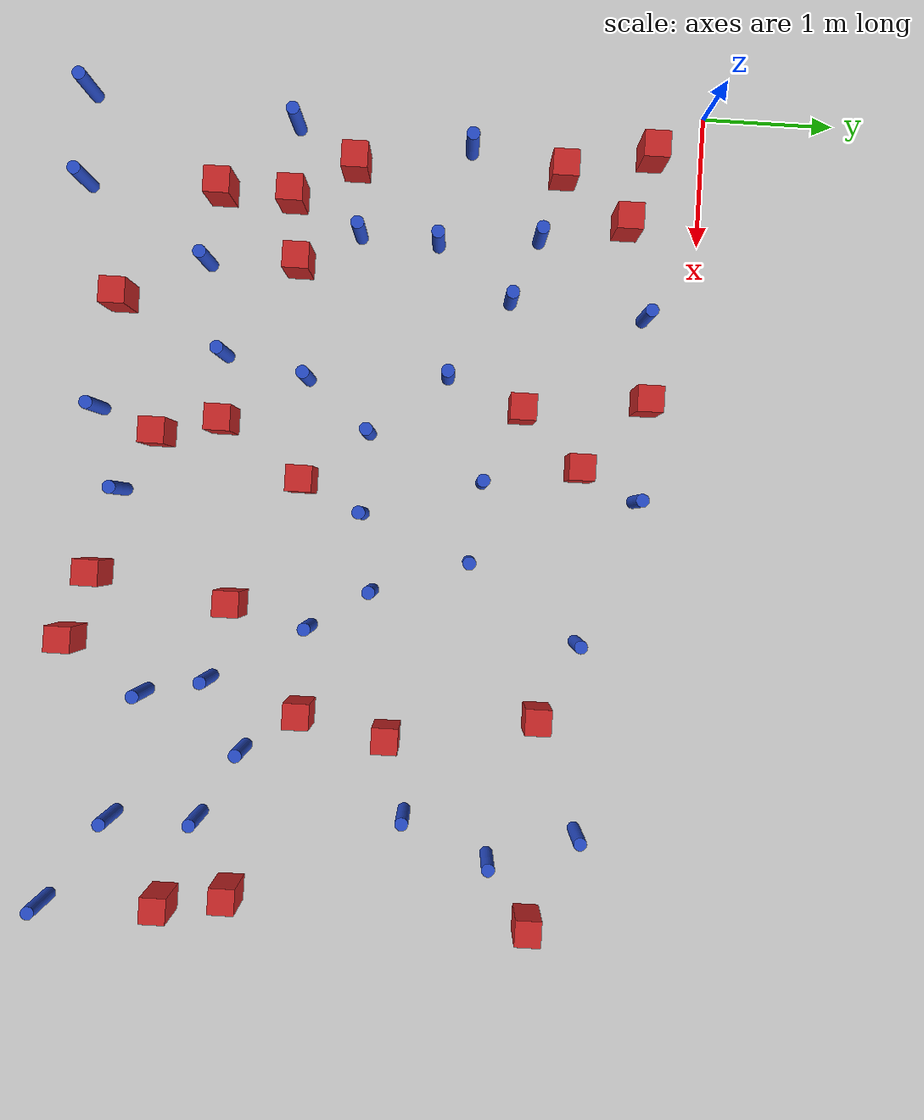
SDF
<sdf version="1.6">
 <world name="default">
  <model name="ground_plane">
   <static>1</static>
   <link name="link">
    <collision name="collision">
     <geometry><plane><normal>0 0 1</normal><size>100 100</size></plane></geometry>
     <surface><friction><ode><mu>100</mu><mu2>50</mu2></ode></friction></surface>
    </collision>
    <visual name="visual">
     <cast_shadows>0</cast_shadows>
     <geometry><plane><normal>0 0 1</normal><size>100 100</size></plane></geometry>
     <material>
      <ambient>1.0 1.0 1.0 1.0</ambient>
      <diffuse>0.8 0.8 0.8 1.0</diffuse>
      <specular>0.01 0.01 0.01 1.000000</specular>
     </material>
    </visual>
   </link>
  </model>
  <model name="pole_obstacle2">
   <static>true</static>
   <pose>0.370122349833 -1.7909447414 -3.09024884793e-07 -7.19054271912e-07 -2.11315075135e-07 -1.93935509265e-07</pose>
   <link name="link">
    <pose>0 0 0.3 0 -0 0</pose>
    <inertial>
     <mass>1</mass>
     <inertia><ixx>0.145833</ixx><ixy>0</ixy><ixz>0</ixz><iyy>0.145833</iyy><iyz>0</iyz><izz>0.125</izz></inertia>
    </inertial>
    <collision name="collision">
     <geometry><cylinder><radius>0.05</radius><length>.6</length></cylinder></geometry>
    </collision>
    <visual name="visual">
     <geometry><cylinder><radius>0.05</radius><length>.6</length></cylinder></geometry>
     <material>
      <script><name>Gazebo/Blue</name><uri>file://media/materials/scripts/gazebo.material</uri></script>
     </material>
    </visual>
   </link>
  </model>
  <model name="square_post_obstacle5">
   <static>true</static>
   <pose>0.797605377734 -3.69238944444 -4.36207812815e-07 3.75137919937e-06 9.77721102514e-07 2.47381364184e-05</pose>
   <link name="link">
    <pose>0 0 0.25 0 -0 0</pose>
    <inertial>
     <mass>100</mass>
     <inertia>
      <ixx>0.166667</ixx>
      <ixy>0</ixy>
      <ixz>0</ixz>
      <iyy>0.166667</iyy>
      <iyz>0</iyz>
      <izz>0.166667</izz>
     </inertia>
    </inertial>
    <collision name="collision"><geometry><box><size>.2 .2 .5</size></box></geometry></collision>
    <visual name="visual">
     <geometry><box><size>.2 .2 .5</size></box></geometry>
     <material>
      <script><name>Gazebo/Red</name><uri>file://media/materials/scripts/gazebo.material</uri></script>
     </material>
    </visual>
   </link>
  </model>
  <model name="square_post_obstacle6">
   <static>true</static>
   <pose>0.887163632337 -0.576067695528 -4.36207812815e-07 3.75137919937e-06 9.77721102514e-07 2.47381364184e-05</pose>
   <link name="link">
    <pose>0 0 0.25 0 -0 0</pose>
    <inertial>
     <mass>100</mass>
     <inertia>
      <ixx>0.166667</ixx>
      <ixy>0</ixy>
      <ixz>0</ixz>
      <iyy>0.166667</iyy>
      <iyz>0</iyz>
      <izz>0.166667</izz>
     </inertia>
    </inertial>
    <collision name="collision"><geometry><box><size>.2 .2 .5</size></box></geometry></collision>
    <visual name="visual">
     <geometry><box><size>.2 .2 .5</size></box></geometry>
     <material>
      <script><name>Gazebo/Red</name><uri>file://media/materials/scripts/gazebo.material</uri></script>
     </material>
    </visual>
   </link>
  </model>
  <model name="square_post_obstacle7">
   <static>true</static>
   <pose>6.27799123049 -3.83323502862 -4.36207812815e-07 3.75137919937e-06 9.77721102514e-07 2.47381364184e-05</pose>
   <link name="link">
    <pose>0 0 0.25 0 -0 0</pose>
    <inertial>
     <mass>100</mass>
     <inertia>
      <ixx>0.166667</ixx>
      <ixy>0</ixy>
      <ixz>0</ixz>
      <iyy>0.166667</iyy>
      <iyz>0</iyz>
      <izz>0.166667</izz>
     </inertia>
    </inertial>
    <collision name="collision"><geometry><box><size>.2 .2 .5</size></box></geometry></collision>
    <visual name="visual">
     <geometry><box><size>.2 .2 .5</size></box></geometry>
     <material>
      <script><name>Gazebo/Red</name><uri>file://media/materials/scripts/gazebo.material</uri></script>
     </material>
    </visual>
   </link>
  </model>
  <model name="square_post_obstacle9">
   <static>true</static>
   <pose>2.24990376615 -0.350922140613 -4.36207812815e-07 3.75137919937e-06 9.77721102514e-07 2.47381364184e-05</pose>
   <link name="link">
    <pose>0 0 0.25 0 -0 0</pose>
    <inertial>
     <mass>100</mass>
     <inertia>
      <ixx>0.166667</ixx>
      <ixy>0</ixy>
      <ixz>0</ixz>
      <iyy>0.166667</iyy>
      <iyz>0</iyz>
      <izz>0.166667</izz>
     </inertia>
    </inertial>
    <collision name="collision"><geometry><box><size>.2 .2 .5</size></box></geometry></collision>
    <visual name="visual">
     <geometry><box><size>.2 .2 .5</size></box></geometry>
     <material>
      <script><name>Gazebo/Red</name><uri>file://media/materials/scripts/gazebo.material</uri></script>
     </material>
    </visual>
   </link>
  </model>
  <model name="square_post_obstacle14">
   <static>true</static>
   <pose>6.28255106497 -1.03655964406 -4.36207812815e-07 3.75137919937e-06 9.77721102514e-07 2.47381364184e-05</pose>
   <link name="link">
    <pose>0 0 0.25 0 -0 0</pose>
    <inertial>
     <mass>100</mass>
     <inertia>
      <ixx>0.166667</ixx>
      <ixy>0</ixy>
      <ixz>0</ixz>
      <iyy>0.166667</iyy>
      <iyz>0</iyz>
      <izz>0.166667</izz>
     </inertia>
    </inertial>
    <collision name="collision"><geometry><box><size>.2 .2 .5</size></box></geometry></collision>
    <visual name="visual">
     <geometry><box><size>.2 .2 .5</size></box></geometry>
     <material>
      <script><name>Gazebo/Red</name><uri>file://media/materials/scripts/gazebo.material</uri></script>
     </material>
    </visual>
   </link>
  </model>
  <model name="square_post_obstacle16">
   <static>true</static>
   <pose>4.30705514549 -4.66671936172 -4.36207812815e-07 3.75137919937e-06 9.77721102514e-07 2.47381364184e-05</pose>
   <link name="link">
    <pose>0 0 0.25 0 -0 0</pose>
    <inertial>
     <mass>100</mass>
     <inertia>
      <ixx>0.166667</ixx>
      <ixy>0</ixy>
      <ixz>0</ixz>
      <iyy>0.166667</iyy>
      <iyz>0</iyz>
      <izz>0.166667</izz>
     </inertia>
    </inertial>
    <collision name="collision"><geometry><box><size>.2 .2 .5</size></box></geometry></collision>
    <visual name="visual">
     <geometry><box><size>.2 .2 .5</size></box></geometry>
     <material>
      <script><name>Gazebo/Red</name><uri>file://media/materials/scripts/gazebo.material</uri></script>
     </material>
    </visual>
   </link>
  </model>
  <model name="pole_obstacle10">
   <static>true</static>
   <pose>1.36425432777 -3.76695761919 -3.09024884793e-07 -7.19054271912e-07 -2.11315075132e-07 -1.93935509263e-07</pose>
   <link name="link">
    <pose>0 0 0.3 0 -0 0</pose>
    <inertial>
     <mass>1</mass>
     <inertia><ixx>0.145833</ixx><ixy>0</ixy><ixz>0</ixz><iyy>0.145833</iyy><iyz>0</iyz><izz>0.125</izz></inertia>
    </inertial>
    <collision name="collision">
     <geometry><cylinder><radius>0.05</radius><length>.6</length></cylinder></geometry>
    </collision>
    <visual name="visual">
     <geometry><cylinder><radius>0.05</radius><length>.6</length></cylinder></geometry>
     <material>
      <script><name>Gazebo/Blue</name><uri>file://media/materials/scripts/gazebo.material</uri></script>
     </material>
    </visual>
   </link>
  </model>
  <model name="square_post_obstacle29">
   <static>true</static>
   <pose>1.67061609866 -4.42372483941 -4.36207812815e-07 3.75137919937e-06 9.77721102514e-07 2.47381364184e-05</pose>
   <link name="link">
    <pose>0 0 0.25 0 -0 0</pose>
    <inertial>
     <mass>100</mass>
     <inertia>
      <ixx>0.166667</ixx>
      <ixy>0</ixy>
      <ixz>0</ixz>
      <iyy>0.166667</iyy>
      <iyz>0</iyz>
      <izz>0.166667</izz>
     </inertia>
    </inertial>
    <collision name="collision"><geometry><box><size>.2 .2 .5</size></box></geometry></collision>
    <visual name="visual">
     <geometry><box><size>.2 .2 .5</size></box></geometry>
     <material>
      <script><name>Gazebo/Red</name><uri>file://media/materials/scripts/gazebo.material</uri></script>
     </material>
    </visual>
   </link>
  </model>
  <model name="pole_obstacle20">
   <static>true</static>
   <pose>1.08154814546 -2.61141462534 -3.09024884793e-07 -7.19054271912e-07 -2.11315075132e-07 -1.93935509263e-07</pose>
   <link name="link">
    <pose>0 0 0.3 0 -0 0</pose>
    <inertial>
     <mass>1</mass>
     <inertia><ixx>0.145833</ixx><ixy>0</ixy><ixz>0</ixz><iyy>0.145833</iyy><iyz>0</iyz><izz>0.125</izz></inertia>
    </inertial>
    <collision name="collision">
     <geometry><cylinder><radius>0.05</radius><length>.6</length></cylinder></geometry>
    </collision>
    <visual name="visual">
     <geometry><cylinder><radius>0.05</radius><length>.6</length></cylinder></geometry>
     <material>
      <script><name>Gazebo/Blue</name><uri>file://media/materials/scripts/gazebo.material</uri></script>
     </material>
    </visual>
   </link>
  </model>
  <model name="pole_obstacle22">
   <static>true</static>
   <pose>1.11464334833 -2.00802353274 -3.09024884793e-07 -7.19054271912e-07 -2.11315075147e-07 -1.9393550927e-07</pose>
   <link name="link">
    <pose>0 0 0.3 0 -0 0</pose>
    <inertial>
     <mass>1</mass>
     <inertia><ixx>0.145833</ixx><ixy>0</ixy><ixz>0</ixz><iyy>0.145833</iyy><iyz>0</iyz><izz>0.125</izz></inertia>
    </inertial>
    <collision name="collision">
     <geometry><cylinder><radius>0.05</radius><length>.6</length></cylinder></geometry>
    </collision>
    <visual name="visual">
     <geometry><cylinder><radius>0.05</radius><length>.6</length></cylinder></geometry>
     <material>
      <script><name>Gazebo/Blue</name><uri>file://media/materials/scripts/gazebo.material</uri></script>
     </material>
    </visual>
   </link>
  </model>
  <model name="pole_obstacle28">
   <static>true</static>
   <pose>4.68784580837 -4.05942385616 -3.09024884793e-07 -7.19054271911e-07 -2.1131507516e-07 -1.93935509277e-07</pose>
   <link name="link">
    <pose>0 0 0.3 0 -0 0</pose>
    <inertial>
     <mass>1</mass>
     <inertia><ixx>0.145833</ixx><ixy>0</ixy><ixz>0</ixz><iyy>0.145833</iyy><iyz>0</iyz><izz>0.125</izz></inertia>
    </inertial>
    <collision name="collision">
     <geometry><cylinder><radius>0.05</radius><length>.6</length></cylinder></geometry>
    </collision>
    <visual name="visual">
     <geometry><cylinder><radius>0.05</radius><length>.6</length></cylinder></geometry>
     <material>
      <script><name>Gazebo/Blue</name><uri>file://media/materials/scripts/gazebo.material</uri></script>
     </material>
    </visual>
   </link>
  </model>
  <model name="square_post_obstacle35">
   <static>true</static>
   <pose>4.92047807495 -2.18730417873 -4.36207812815e-07 3.75137919937e-06 9.77721102514e-07 2.47381364184e-05</pose>
   <link name="link">
    <pose>0 0 0.25 0 -0 0</pose>
    <inertial>
     <mass>100</mass>
     <inertia>
      <ixx>0.166667</ixx>
      <ixy>0</ixy>
      <ixz>0</ixz>
      <iyy>0.166667</iyy>
      <iyz>0</iyz>
      <izz>0.166667</izz>
     </inertia>
    </inertial>
    <collision name="collision"><geometry><box><size>.2 .2 .5</size></box></geometry></collision>
    <visual name="visual">
     <geometry><box><size>.2 .2 .5</size></box></geometry>
     <material>
      <script><name>Gazebo/Red</name><uri>file://media/materials/scripts/gazebo.material</uri></script>
     </material>
    </visual>
   </link>
  </model>
  <model name="pole_obstacle49">
   <static>true</static>
   <pose>0.798704690108 -4.73539760682 -3.09024884793e-07 -7.19054271912e-07 -2.11315075129e-07 -1.93935509261e-07</pose>
   <link name="link">
    <pose>0 0 0.3 0 -0 0</pose>
    <inertial>
     <mass>1</mass>
     <inertia><ixx>0.145833</ixx><ixy>0</ixy><ixz>0</ixz><iyy>0.145833</iyy><iyz>0</iyz><izz>0.125</izz></inertia>
    </inertial>
    <collision name="collision">
     <geometry><cylinder><radius>0.05</radius><length>.6</length></cylinder></geometry>
    </collision>
    <visual name="visual">
     <geometry><cylinder><radius>0.05</radius><length>.6</length></cylinder></geometry>
     <material>
      <script><name>Gazebo/Blue</name><uri>file://media/materials/scripts/gazebo.material</uri></script>
     </material>
    </visual>
   </link>
  </model>
  <model name="pole_obstacle51">
   <static>true</static>
   <pose>2.93943846545 -1.56520612446 -3.09024884793e-07 -7.19054271912e-07 -2.11315075122e-07 -1.93935509259e-07</pose>
   <link name="link">
    <pose>0 0 0.3 0 -0 0</pose>
    <inertial>
     <mass>1</mass>
     <inertia><ixx>0.145833</ixx><ixy>0</ixy><ixz>0</ixz><iyy>0.145833</iyy><iyz>0</iyz><izz>0.125</izz></inertia>
    </inertial>
    <collision name="collision">
     <geometry><cylinder><radius>0.05</radius><length>.6</length></cylinder></geometry>
    </collision>
    <visual name="visual">
     <geometry><cylinder><radius>0.05</radius><length>.6</length></cylinder></geometry>
     <material>
      <script><name>Gazebo/Blue</name><uri>file://media/materials/scripts/gazebo.material</uri></script>
     </material>
    </visual>
   </link>
  </model>
  <model name="pole_obstacle52">
   <static>true</static>
   <pose>1.60614680435 -0.392554580799 -3.09024884793e-07 -7.19054271912e-07 -2.11315075131e-07 -1.93935509264e-07</pose>
   <link name="link">
    <pose>0 0 0.3 0 -0 0</pose>
    <inertial>
     <mass>1</mass>
     <inertia><ixx>0.145833</ixx><ixy>0</ixy><ixz>0</ixz><iyy>0.145833</iyy><iyz>0</iyz><izz>0.125</izz></inertia>
    </inertial>
    <collision name="collision">
     <geometry><cylinder><radius>0.05</radius><length>.6</length></cylinder></geometry>
    </collision>
    <visual name="visual">
     <geometry><cylinder><radius>0.05</radius><length>.6</length></cylinder></geometry>
     <material>
      <script><name>Gazebo/Blue</name><uri>file://media/materials/scripts/gazebo.material</uri></script>
     </material>
    </visual>
   </link>
  </model>
  <model name="square_post_obstacle56">
   <static>true</static>
   <pose>6.17896540685 -3.32703344704 -4.36207812815e-07 3.75137919937e-06 9.77721102514e-07 2.47381364184e-05</pose>
   <link name="link">
    <pose>0 0 0.25 0 -0 0</pose>
    <inertial>
     <mass>100</mass>
     <inertia>
      <ixx>0.166667</ixx>
      <ixy>0</ixy>
      <ixz>0</ixz>
      <iyy>0.166667</iyy>
      <iyz>0</iyz>
      <izz>0.166667</izz>
     </inertia>
    </inertial>
    <collision name="collision"><geometry><box><size>.2 .2 .5</size></box></geometry></collision>
    <visual name="visual">
     <geometry><box><size>.2 .2 .5</size></box></geometry>
     <material>
      <script><name>Gazebo/Red</name><uri>file://media/materials/scripts/gazebo.material</uri></script>
     </material>
    </visual>
   </link>
  </model>
  <model name="pole_obstacle61">
   <static>true</static>
   <pose>2.60873149613 -2.45603201494 -3.09024884793e-07 -7.19054271912e-07 -2.11315075144e-07 -1.93935509271e-07</pose>
   <link name="link">
    <pose>0 0 0.3 0 -0 0</pose>
    <inertial>
     <mass>1</mass>
     <inertia><ixx>0.145833</ixx><ixy>0</ixy><ixz>0</ixz><iyy>0.145833</iyy><iyz>0</iyz><izz>0.125</izz></inertia>
    </inertial>
    <collision name="collision">
     <geometry><cylinder><radius>0.05</radius><length>.6</length></cylinder></geometry>
    </collision>
    <visual name="visual">
     <geometry><cylinder><radius>0.05</radius><length>.6</length></cylinder></geometry>
     <material>
      <script><name>Gazebo/Blue</name><uri>file://media/materials/scripts/gazebo.material</uri></script>
     </material>
    </visual>
   </link>
  </model>
  <model name="square_post_obstacle70">
   <static>true</static>
   <pose>2.7924469159 -0.831403986917 -4.36207812815e-07 3.75137919937e-06 9.77721102514e-07 2.47381364184e-05</pose>
   <link name="link">
    <pose>0 0 0.25 0 -0 0</pose>
    <inertial>
     <mass>100</mass>
     <inertia>
      <ixx>0.166667</ixx>
      <ixy>0</ixy>
      <ixz>0</ixz>
      <iyy>0.166667</iyy>
      <iyz>0</iyz>
      <izz>0.166667</izz>
     </inertia>
    </inertial>
    <collision name="collision"><geometry><box><size>.2 .2 .5</size></box></geometry></collision>
    <visual name="visual">
     <geometry><box><size>.2 .2 .5</size></box></geometry>
     <material>
      <script><name>Gazebo/Red</name><uri>file://media/materials/scripts/gazebo.material</uri></script>
     </material>
    </visual>
   </link>
  </model>
  <model name="pole_obstacle86">
   <static>true</static>
   <pose>3.1492034354 -4.32626616608 -3.09024884793e-07 -7.19054271912e-07 -2.11315075134e-07 -1.93935509266e-07</pose>
   <link name="link">
    <pose>0 0 0.3 0 -0 0</pose>
    <inertial>
     <mass>1</mass>
     <inertia><ixx>0.145833</ixx><ixy>0</ixy><ixz>0</ixz><iyy>0.145833</iyy><iyz>0</iyz><izz>0.125</izz></inertia>
    </inertial>
    <collision name="collision">
     <geometry><cylinder><radius>0.05</radius><length>.6</length></cylinder></geometry>
    </collision>
    <visual name="visual">
     <geometry><cylinder><radius>0.05</radius><length>.6</length></cylinder></geometry>
     <material>
      <script><name>Gazebo/Blue</name><uri>file://media/materials/scripts/gazebo.material</uri></script>
     </material>
    </visual>
   </link>
  </model>
  <model name="pole_obstacle95">
   <static>true</static>
   <pose>5.80385873296 -1.36431974059 -3.09024884793e-07 -7.19054271912e-07 -2.11315075124e-07 -1.93935509261e-07</pose>
   <link name="link">
    <pose>0 0 0.3 0 -0 0</pose>
    <inertial>
     <mass>1</mass>
     <inertia><ixx>0.145833</ixx><ixy>0</ixy><ixz>0</ixz><iyy>0.145833</iyy><iyz>0</iyz><izz>0.125</izz></inertia>
    </inertial>
    <collision name="collision">
     <geometry><cylinder><radius>0.05</radius><length>.6</length></cylinder></geometry>
    </collision>
    <visual name="visual">
     <geometry><cylinder><radius>0.05</radius><length>.6</length></cylinder></geometry>
     <material>
      <script><name>Gazebo/Blue</name><uri>file://media/materials/scripts/gazebo.material</uri></script>
     </material>
    </visual>
   </link>
  </model>
  <model name="square_post_obstacle90">
   <static>true</static>
   <pose>4.71413846708 -1.04967807406 -4.36207812815e-07 3.75137919937e-06 9.77721102514e-07 2.47381364184e-05</pose>
   <link name="link">
    <pose>0 0 0.25 0 -0 0</pose>
    <inertial>
     <mass>100</mass>
     <inertia>
      <ixx>0.166667</ixx>
      <ixy>0</ixy>
      <ixz>0</ixz>
      <iyy>0.166667</iyy>
      <iyz>0</iyz>
      <izz>0.166667</izz>
     </inertia>
    </inertial>
    <collision name="collision"><geometry><box><size>.2 .2 .5</size></box></geometry></collision>
    <visual name="visual">
     <geometry><box><size>.2 .2 .5</size></box></geometry>
     <material>
      <script><name>Gazebo/Red</name><uri>file://media/materials/scripts/gazebo.material</uri></script>
     </material>
    </visual>
   </link>
  </model>
  <model name="pole_obstacle104">
   <static>true</static>
   <pose>1.52994491638 -1.42827334166 -3.09024884793e-07 -7.19054271912e-07 -2.1131507513e-07 -1.93935509263e-07</pose>
   <link name="link">
    <pose>0 0 0.3 0 -0 0</pose>
    <inertial>
     <mass>1</mass>
     <inertia><ixx>0.145833</ixx><ixy>0</ixy><ixz>0</ixz><iyy>0.145833</iyy><iyz>0</iyz><izz>0.125</izz></inertia>
    </inertial>
    <collision name="collision">
     <geometry><cylinder><radius>0.05</radius><length>.6</length></cylinder></geometry>
    </collision>
    <visual name="visual">
     <geometry><cylinder><radius>0.05</radius><length>.6</length></cylinder></geometry>
     <material>
      <script><name>Gazebo/Blue</name><uri>file://media/materials/scripts/gazebo.material</uri></script>
     </material>
    </visual>
   </link>
  </model>
  <model name="square_post_obstacle93">
   <static>true</static>
   <pose>3.79609591982 -4.4916712543 -4.36207812815e-07 3.75137919937e-06 9.77721102514e-07 2.47381364184e-05</pose>
   <link name="link">
    <pose>0 0 0.25 0 -0 0</pose>
    <inertial>
     <mass>100</mass>
     <inertia>
      <ixx>0.166667</ixx>
      <ixy>0</ixy>
      <ixz>0</ixz>
      <iyy>0.166667</iyy>
      <iyz>0</iyz>
      <izz>0.166667</izz>
     </inertia>
    </inertial>
    <collision name="collision"><geometry><box><size>.2 .2 .5</size></box></geometry></collision>
    <visual name="visual">
     <geometry><box><size>.2 .2 .5</size></box></geometry>
     <material>
      <script><name>Gazebo/Red</name><uri>file://media/materials/scripts/gazebo.material</uri></script>
     </material>
    </visual>
   </link>
  </model>
  <model name="pole_obstacle113">
   <static>true</static>
   <pose>2.06847149312 -3.59614289237 -3.09024884793e-07 -7.19054271912e-07 -2.11315075144e-07 -1.93935509271e-07</pose>
   <link name="link">
    <pose>0 0 0.3 0 -0 0</pose>
    <inertial>
     <mass>1</mass>
     <inertia><ixx>0.145833</ixx><ixy>0</ixy><ixz>0</ixz><iyy>0.145833</iyy><iyz>0</iyz><izz>0.125</izz></inertia>
    </inertial>
    <collision name="collision">
     <geometry><cylinder><radius>0.05</radius><length>.6</length></cylinder></geometry>
    </collision>
    <visual name="visual">
     <geometry><cylinder><radius>0.05</radius><length>.6</length></cylinder></geometry>
     <material>
      <script><name>Gazebo/Blue</name><uri>file://media/materials/scripts/gazebo.material</uri></script>
     </material>
    </visual>
   </link>
  </model>
  <model name="square_post_obstacle112">
   <static>true</static>
   <pose>4.77678064498 -2.85812338993 -4.36207812815e-07 3.75137919937e-06 9.77721102514e-07 2.47381364184e-05</pose>
   <link name="link">
    <pose>0 0 0.25 0 -0 0</pose>
    <inertial>
     <mass>100</mass>
     <inertia>
      <ixx>0.166667</ixx>
      <ixy>0</ixy>
      <ixz>0</ixz>
      <iyy>0.166667</iyy>
      <iyz>0</iyz>
      <izz>0.166667</izz>
     </inertia>
    </inertial>
    <collision name="collision"><geometry><box><size>.2 .2 .5</size></box></geometry></collision>
    <visual name="visual">
     <geometry><box><size>.2 .2 .5</size></box></geometry>
     <material>
      <script><name>Gazebo/Red</name><uri>file://media/materials/scripts/gazebo.material</uri></script>
     </material>
    </visual>
   </link>
  </model>
  <model name="square_post_obstacle117">
   <static>true</static>
   <pose>3.96984012129 -3.43077434661 -4.36207812815e-07 3.75137919937e-06 9.77721102514e-07 2.47381364184e-05</pose>
   <link name="link">
    <pose>0 0 0.25 0 -0 0</pose>
    <inertial>
     <mass>100</mass>
     <inertia>
      <ixx>0.166667</ixx>
      <ixy>0</ixy>
      <ixz>0</ixz>
      <iyy>0.166667</iyy>
      <iyz>0</iyz>
      <izz>0.166667</izz>
     </inertia>
    </inertial>
    <collision name="collision"><geometry><box><size>.2 .2 .5</size></box></geometry></collision>
    <visual name="visual">
     <geometry><box><size>.2 .2 .5</size></box></geometry>
     <material>
      <script><name>Gazebo/Red</name><uri>file://media/materials/scripts/gazebo.material</uri></script>
     </material>
    </visual>
   </link>
  </model>
  <model name="square_post_obstacle118">
   <static>true</static>
   <pose>2.99949820841 -2.94340561533 -4.36207812815e-07 3.75137919937e-06 9.77721102514e-07 2.47381364184e-05</pose>
   <link name="link">
    <pose>0 0 0.25 0 -0 0</pose>
    <inertial>
     <mass>100</mass>
     <inertia>
      <ixx>0.166667</ixx>
      <ixy>0</ixy>
      <ixz>0</ixz>
      <iyy>0.166667</iyy>
      <iyz>0</iyz>
      <izz>0.166667</izz>
     </inertia>
    </inertial>
    <collision name="collision"><geometry><box><size>.2 .2 .5</size></box></geometry></collision>
    <visual name="visual">
     <geometry><box><size>.2 .2 .5</size></box></geometry>
     <material>
      <script><name>Gazebo/Red</name><uri>file://media/materials/scripts/gazebo.material</uri></script>
     </material>
    </visual>
   </link>
  </model>
  <model name="square_post_obstacle122">
   <static>true</static>
   <pose>0.546203957789 -2.67001004526 -4.36207812815e-07 3.75137919937e-06 9.77721102514e-07 2.47381364184e-05</pose>
   <link name="link">
    <pose>0 0 0.25 0 -0 0</pose>
    <inertial>
     <mass>100</mass>
     <inertia>
      <ixx>0.166667</ixx>
      <ixy>0</ixy>
      <ixz>0</ixz>
      <iyy>0.166667</iyy>
      <iyz>0</iyz>
      <izz>0.166667</izz>
     </inertia>
    </inertial>
    <collision name="collision"><geometry><box><size>.2 .2 .5</size></box></geometry></collision>
    <visual name="visual">
     <geometry><box><size>.2 .2 .5</size></box></geometry>
     <material>
      <script><name>Gazebo/Red</name><uri>file://media/materials/scripts/gazebo.material</uri></script>
     </material>
    </visual>
   </link>
  </model>
  <model name="pole_obstacle140">
   <static>true</static>
   <pose>2.5324042838 -4.53718294588 -3.09024884793e-07 -7.19054271912e-07 -2.11315075134e-07 -1.93935509266e-07</pose>
   <link name="link">
    <pose>0 0 0.3 0 -0 0</pose>
    <inertial>
     <mass>1</mass>
     <inertia><ixx>0.145833</ixx><ixy>0</ixy><ixz>0</ixz><iyy>0.145833</iyy><iyz>0</iyz><izz>0.125</izz></inertia>
    </inertial>
    <collision name="collision">
     <geometry><cylinder><radius>0.05</radius><length>.6</length></cylinder></geometry>
    </collision>
    <visual name="visual">
     <geometry><cylinder><radius>0.05</radius><length>.6</length></cylinder></geometry>
     <material>
      <script><name>Gazebo/Blue</name><uri>file://media/materials/scripts/gazebo.material</uri></script>
     </material>
    </visual>
   </link>
  </model>
  <model name="pole_obstacle142">
   <static>true</static>
   <pose>5.64050733451 -4.24609016329 -3.09024884793e-07 -7.19054271911e-07 -2.1131507516e-07 -1.93935509277e-07</pose>
   <link name="link">
    <pose>0 0 0.3 0 -0 0</pose>
    <inertial>
     <mass>1</mass>
     <inertia><ixx>0.145833</ixx><ixy>0</ixy><ixz>0</ixz><iyy>0.145833</iyy><iyz>0</iyz><izz>0.125</izz></inertia>
    </inertial>
    <collision name="collision">
     <geometry><cylinder><radius>0.05</radius><length>.6</length></cylinder></geometry>
    </collision>
    <visual name="visual">
     <geometry><cylinder><radius>0.05</radius><length>.6</length></cylinder></geometry>
     <material>
      <script><name>Gazebo/Blue</name><uri>file://media/materials/scripts/gazebo.material</uri></script>
     </material>
    </visual>
   </link>
  </model>
  <model name="square_post_obstacle143">
   <static>true</static>
   <pose>1.32860456415 -3.06618938229 -4.36207812815e-07 3.75137919937e-06 9.77721102514e-07 2.47381364184e-05</pose>
   <link name="link">
    <pose>0 0 0.25 0 -0 0</pose>
    <inertial>
     <mass>100</mass>
     <inertia>
      <ixx>0.166667</ixx>
      <ixy>0</ixy>
      <ixz>0</ixz>
      <iyy>0.166667</iyy>
      <iyz>0</iyz>
      <izz>0.166667</izz>
     </inertia>
    </inertial>
    <collision name="collision"><geometry><box><size>.2 .2 .5</size></box></geometry></collision>
    <visual name="visual">
     <geometry><box><size>.2 .2 .5</size></box></geometry>
     <material>
      <script><name>Gazebo/Red</name><uri>file://media/materials/scripts/gazebo.material</uri></script>
     </material>
    </visual>
   </link>
  </model>
  <model name="pole_obstacle156">
   <static>true</static>
   <pose>5.5741893526 -0.6987742976 -3.09024884793e-07 -7.19054271912e-07 -2.11315075134e-07 -1.93935509265e-07</pose>
   <link name="link">
    <pose>0 0 0.3 0 -0 0</pose>
    <inertial>
     <mass>1</mass>
     <inertia><ixx>0.145833</ixx><ixy>0</ixy><ixz>0</ixz><iyy>0.145833</iyy><iyz>0</iyz><izz>0.125</izz></inertia>
    </inertial>
    <collision name="collision">
     <geometry><cylinder><radius>0.05</radius><length>.6</length></cylinder></geometry>
    </collision>
    <visual name="visual">
     <geometry><cylinder><radius>0.05</radius><length>.6</length></cylinder></geometry>
     <material>
      <script><name>Gazebo/Blue</name><uri>file://media/materials/scripts/gazebo.material</uri></script>
     </material>
    </visual>
   </link>
  </model>
  <model name="square_post_obstacle150">
   <static>true</static>
   <pose>2.36504181959 -1.29439901292 -4.36207812815e-07 3.75137919937e-06 9.77721102514e-07 2.47381364184e-05</pose>
   <link name="link">
    <pose>0 0 0.25 0 -0 0</pose>
    <inertial>
     <mass>100</mass>
     <inertia>
      <ixx>0.166667</ixx>
      <ixy>0</ixy>
      <ixz>0</ixz>
      <iyy>0.166667</iyy>
      <iyz>0</iyz>
      <izz>0.166667</izz>
     </inertia>
    </inertial>
    <collision name="collision"><geometry><box><size>.2 .2 .5</size></box></geometry></collision>
    <visual name="visual">
     <geometry><box><size>.2 .2 .5</size></box></geometry>
     <material>
      <script><name>Gazebo/Red</name><uri>file://media/materials/scripts/gazebo.material</uri></script>
     </material>
    </visual>
   </link>
  </model>
  <model name="pole_obstacle160">
   <static>true</static>
   <pose>1.03682305809 -1.23215677299 -3.09024884793e-07 -7.19054271912e-07 -2.11315075126e-07 -1.93935509259e-07</pose>
   <link name="link">
    <pose>0 0 0.3 0 -0 0</pose>
    <inertial>
     <mass>1</mass>
     <inertia><ixx>0.145833</ixx><ixy>0</ixy><ixz>0</ixz><iyy>0.145833</iyy><iyz>0</iyz><izz>0.125</izz></inertia>
    </inertial>
    <collision name="collision">
     <geometry><cylinder><radius>0.05</radius><length>.6</length></cylinder></geometry>
    </collision>
    <visual name="visual">
     <geometry><cylinder><radius>0.05</radius><length>.6</length></cylinder></geometry>
     <material>
      <script><name>Gazebo/Blue</name><uri>file://media/materials/scripts/gazebo.material</uri></script>
     </material>
    </visual>
   </link>
  </model>
  <model name="pole_obstacle164">
   <static>true</static>
   <pose>0.0921612730403 -4.74217585882 -3.09024884793e-07 -7.19054271912e-07 -2.11315075132e-07 -1.93935509264e-07</pose>
   <link name="link">
    <pose>0 0 0.3 0 -0 0</pose>
    <inertial>
     <mass>1</mass>
     <inertia><ixx>0.145833</ixx><ixy>0</ixy><ixz>0</ixz><iyy>0.145833</iyy><iyz>0</iyz><izz>0.125</izz></inertia>
    </inertial>
    <collision name="collision">
     <geometry><cylinder><radius>0.05</radius><length>.6</length></cylinder></geometry>
    </collision>
    <visual name="visual">
     <geometry><cylinder><radius>0.05</radius><length>.6</length></cylinder></geometry>
     <material>
      <script><name>Gazebo/Blue</name><uri>file://media/materials/scripts/gazebo.material</uri></script>
     </material>
    </visual>
   </link>
  </model>
  <model name="pole_obstacle169">
   <static>true</static>
   <pose>5.50387822766 -2.02105996576 -3.09024884793e-07 -7.19054271912e-07 -2.11315075132e-07 -1.93935509263e-07</pose>
   <link name="link">
    <pose>0 0 0.3 0 -0 0</pose>
    <inertial>
     <mass>1</mass>
     <inertia><ixx>0.145833</ixx><ixy>0</ixy><ixz>0</ixz><iyy>0.145833</iyy><iyz>0</iyz><izz>0.125</izz></inertia>
    </inertial>
    <collision name="collision">
     <geometry><cylinder><radius>0.05</radius><length>.6</length></cylinder></geometry>
    </collision>
    <visual name="visual">
     <geometry><cylinder><radius>0.05</radius><length>.6</length></cylinder></geometry>
     <material>
      <script><name>Gazebo/Blue</name><uri>file://media/materials/scripts/gazebo.material</uri></script>
     </material>
    </visual>
   </link>
  </model>
  <model name="square_post_obstacle164">
   <static>true</static>
   <pose>0.335898204878 -0.40729793149 -4.36207812815e-07 3.75137919937e-06 9.77721102514e-07 2.47381364184e-05</pose>
   <link name="link">
    <pose>0 0 0.25 0 -0 0</pose>
    <inertial>
     <mass>100</mass>
     <inertia>
      <ixx>0.166667</ixx>
      <ixy>0</ixy>
      <ixz>0</ixz>
      <iyy>0.166667</iyy>
      <iyz>0</iyz>
      <izz>0.166667</izz>
     </inertia>
    </inertial>
    <collision name="collision"><geometry><box><size>.2 .2 .5</size></box></geometry></collision>
    <visual name="visual">
     <geometry><box><size>.2 .2 .5</size></box></geometry>
     <material>
      <script><name>Gazebo/Red</name><uri>file://media/materials/scripts/gazebo.material</uri></script>
     </material>
    </visual>
   </link>
  </model>
  <model name="pole_obstacle175">
   <static>true</static>
   <pose>3.01864579658 -0.3834813602 -3.09024884793e-07 -7.19054271912e-07 -2.1131507512e-07 -1.93935509259e-07</pose>
   <link name="link">
    <pose>0 0 0.3 0 -0 0</pose>
    <inertial>
     <mass>1</mass>
     <inertia><ixx>0.145833</ixx><ixy>0</ixy><ixz>0</ixz><iyy>0.145833</iyy><iyz>0</iyz><izz>0.125</izz></inertia>
    </inertial>
    <collision name="collision">
     <geometry><cylinder><radius>0.05</radius><length>.6</length></cylinder></geometry>
    </collision>
    <visual name="visual">
     <geometry><cylinder><radius>0.05</radius><length>.6</length></cylinder></geometry>
     <material>
      <script><name>Gazebo/Blue</name><uri>file://media/materials/scripts/gazebo.material</uri></script>
     </material>
    </visual>
   </link>
  </model>
  <model name="square_post_obstacle167">
   <static>true</static>
   <pose>0.515897201949 -1.0812229649 -4.36207812815e-07 3.75137919937e-06 9.77721102514e-07 2.47381364184e-05</pose>
   <link name="link">
    <pose>0 0 0.25 0 -0 0</pose>
    <inertial>
     <mass>100</mass>
     <inertia>
      <ixx>0.166667</ixx>
      <ixy>0</ixy>
      <ixz>0</ixz>
      <iyy>0.166667</iyy>
      <iyz>0</iyz>
      <izz>0.166667</izz>
     </inertia>
    </inertial>
    <collision name="collision"><geometry><box><size>.2 .2 .5</size></box></geometry></collision>
    <visual name="visual">
     <geometry><box><size>.2 .2 .5</size></box></geometry>
     <material>
      <script><name>Gazebo/Red</name><uri>file://media/materials/scripts/gazebo.material</uri></script>
     </material>
    </visual>
   </link>
  </model>
  <model name="square_post_obstacle186">
   <static>true</static>
   <pose>2.70147785399 -4.0641982142 -4.36207812815e-07 3.75137919937e-06 9.77721102514e-07 2.47381364184e-05</pose>
   <link name="link">
    <pose>0 0 0.25 0 -0 0</pose>
    <inertial>
     <mass>100</mass>
     <inertia>
      <ixx>0.166667</ixx>
      <ixy>0</ixy>
      <ixz>0</ixz>
      <iyy>0.166667</iyy>
      <iyz>0</iyz>
      <izz>0.166667</izz>
     </inertia>
    </inertial>
    <collision name="collision"><geometry><box><size>.2 .2 .5</size></box></geometry></collision>
    <visual name="visual">
     <geometry><box><size>.2 .2 .5</size></box></geometry>
     <material>
      <script><name>Gazebo/Red</name><uri>file://media/materials/scripts/gazebo.material</uri></script>
     </material>
    </visual>
   </link>
  </model>
  <model name="square_post_obstacle189">
   <static>true</static>
   <pose>2.57675788085 -3.57889418908 -4.36207812815e-07 3.75137919937e-06 9.77721102514e-07 2.47381364184e-05</pose>
   <link name="link">
    <pose>0 0 0.25 0 -0 0</pose>
    <inertial>
     <mass>100</mass>
     <inertia>
      <ixx>0.166667</ixx>
      <ixy>0</ixy>
      <ixz>0</ixz>
      <iyy>0.166667</iyy>
      <iyz>0</iyz>
      <izz>0.166667</izz>
     </inertia>
    </inertial>
    <collision name="collision"><geometry><box><size>.2 .2 .5</size></box></geometry></collision>
    <visual name="visual">
     <geometry><box><size>.2 .2 .5</size></box></geometry>
     <material>
      <script><name>Gazebo/Red</name><uri>file://media/materials/scripts/gazebo.material</uri></script>
     </material>
    </visual>
   </link>
  </model>
  <model name="square_post_obstacle194">
   <static>true</static>
   <pose>0.821921892478 -3.14156468619 -4.36207812815e-07 3.75137919937e-06 9.77721102514e-07 2.47381364184e-05</pose>
   <link name="link">
    <pose>0 0 0.25 0 -0 0</pose>
    <inertial>
     <mass>100</mass>
     <inertia>
      <ixx>0.166667</ixx>
      <ixy>0</ixy>
      <ixz>0</ixz>
      <iyy>0.166667</iyy>
      <iyz>0</iyz>
      <izz>0.166667</izz>
     </inertia>
    </inertial>
    <collision name="collision"><geometry><box><size>.2 .2 .5</size></box></geometry></collision>
    <visual name="visual">
     <geometry><box><size>.2 .2 .5</size></box></geometry>
     <material>
      <script><name>Gazebo/Red</name><uri>file://media/materials/scripts/gazebo.material</uri></script>
     </material>
    </visual>
   </link>
  </model>
  <model name="pole_obstacle191">
   <static>true</static>
   <pose>3.81827993339 -2.36624751641 -3.09024884793e-07 -7.19054271912e-07 -2.11315075144e-07 -1.93935509271e-07</pose>
   <link name="link">
    <pose>0 0 0.3 0 -0 0</pose>
    <inertial>
     <mass>1</mass>
     <inertia><ixx>0.145833</ixx><ixy>0</ixy><ixz>0</ixz><iyy>0.145833</iyy><iyz>0</iyz><izz>0.125</izz></inertia>
    </inertial>
    <collision name="collision">
     <geometry><cylinder><radius>0.05</radius><length>.6</length></cylinder></geometry>
    </collision>
    <visual name="visual">
     <geometry><cylinder><radius>0.05</radius><length>.6</length></cylinder></geometry>
     <material>
      <script><name>Gazebo/Blue</name><uri>file://media/materials/scripts/gazebo.material</uri></script>
     </material>
    </visual>
   </link>
  </model>
  <model name="pole_obstacle195">
   <static>true</static>
   <pose>4.55527854325 -3.5682957732 -3.09024884793e-07 -7.19054271912e-07 -2.11315075144e-07 -1.93935509269e-07</pose>
   <link name="link">
    <pose>0 0 0.3 0 -0 0</pose>
    <inertial>
     <mass>1</mass>
     <inertia><ixx>0.145833</ixx><ixy>0</ixy><ixz>0</ixz><iyy>0.145833</iyy><iyz>0</iyz><izz>0.125</izz></inertia>
    </inertial>
    <collision name="collision">
     <geometry><cylinder><radius>0.05</radius><length>.6</length></cylinder></geometry>
    </collision>
    <visual name="visual">
     <geometry><cylinder><radius>0.05</radius><length>.6</length></cylinder></geometry>
     <material>
      <script><name>Gazebo/Blue</name><uri>file://media/materials/scripts/gazebo.material</uri></script>
     </material>
    </visual>
   </link>
  </model>
  <model name="pole_obstacle202">
   <static>true</static>
   <pose>5.07682091381 -3.27527207711 -3.09024884793e-07 -7.19054271912e-07 -2.11315075144e-07 -1.93935509269e-07</pose>
   <link name="link">
    <pose>0 0 0.3 0 -0 0</pose>
    <inertial>
     <mass>1</mass>
     <inertia><ixx>0.145833</ixx><ixy>0</ixy><ixz>0</ixz><iyy>0.145833</iyy><iyz>0</iyz><izz>0.125</izz></inertia>
    </inertial>
    <collision name="collision">
     <geometry><cylinder><radius>0.05</radius><length>.6</length></cylinder></geometry>
    </collision>
    <visual name="visual">
     <geometry><cylinder><radius>0.05</radius><length>.6</length></cylinder></geometry>
     <material>
      <script><name>Gazebo/Blue</name><uri>file://media/materials/scripts/gazebo.material</uri></script>
     </material>
    </visual>
   </link>
  </model>
  <model name="pole_obstacle212">
   <static>true</static>
   <pose>2.21472971417 -2.95043452289 -3.09024884793e-07 -7.19054271912e-07 -2.11315075144e-07 -1.93935509271e-07</pose>
   <link name="link">
    <pose>0 0 0.3 0 -0 0</pose>
    <inertial>
     <mass>1</mass>
     <inertia><ixx>0.145833</ixx><ixy>0</ixy><ixz>0</ixz><iyy>0.145833</iyy><iyz>0</iyz><izz>0.125</izz></inertia>
    </inertial>
    <collision name="collision">
     <geometry><cylinder><radius>0.05</radius><length>.6</length></cylinder></geometry>
    </collision>
    <visual name="visual">
     <geometry><cylinder><radius>0.05</radius><length>.6</length></cylinder></geometry>
     <material>
      <script><name>Gazebo/Blue</name><uri>file://media/materials/scripts/gazebo.material</uri></script>
     </material>
    </visual>
   </link>
  </model>
  <model name="pole_obstacle215">
   <static>true</static>
   <pose>3.22952566408 -2.47420527466 -3.09024884793e-07 -7.19054271912e-07 -2.11315075144e-07 -1.93935509271e-07</pose>
   <link name="link">
    <pose>0 0 0.3 0 -0 0</pose>
    <inertial>
     <mass>1</mass>
     <inertia><ixx>0.145833</ixx><ixy>0</ixy><ixz>0</ixz><iyy>0.145833</iyy><iyz>0</iyz><izz>0.125</izz></inertia>
    </inertial>
    <collision name="collision">
     <geometry><cylinder><radius>0.05</radius><length>.6</length></cylinder></geometry>
    </collision>
    <visual name="visual">
     <geometry><cylinder><radius>0.05</radius><length>.6</length></cylinder></geometry>
     <material>
      <script><name>Gazebo/Blue</name><uri>file://media/materials/scripts/gazebo.material</uri></script>
     </material>
    </visual>
   </link>
  </model>
  <model name="pole_obstacle220">
   <static>true</static>
   <pose>2.14261868668 -1.87539764717 -3.09024884793e-07 -7.19054271912e-07 -2.11315075122e-07 -1.93935509259e-07</pose>
   <link name="link">
    <pose>0 0 0.3 0 -0 0</pose>
    <inertial>
     <mass>1</mass>
     <inertia><ixx>0.145833</ixx><ixy>0</ixy><ixz>0</ixz><iyy>0.145833</iyy><iyz>0</iyz><izz>0.125</izz></inertia>
    </inertial>
    <collision name="collision">
     <geometry><cylinder><radius>0.05</radius><length>.6</length></cylinder></geometry>
    </collision>
    <visual name="visual">
     <geometry><cylinder><radius>0.05</radius><length>.6</length></cylinder></geometry>
     <material>
      <script><name>Gazebo/Blue</name><uri>file://media/materials/scripts/gazebo.material</uri></script>
     </material>
    </visual>
   </link>
  </model>
  <model name="pole_obstacle221">
   <static>true</static>
   <pose>4.11698974912 -2.82535980258 -3.09024884793e-07 -7.19054271912e-07 -2.11315075144e-07 -1.93935509269e-07</pose>
   <link name="link">
    <pose>0 0 0.3 0 -0 0</pose>
    <inertial>
     <mass>1</mass>
     <inertia><ixx>0.145833</ixx><ixy>0</ixy><ixz>0</ixz><iyy>0.145833</iyy><iyz>0</iyz><izz>0.125</izz></inertia>
    </inertial>
    <collision name="collision">
     <geometry><cylinder><radius>0.05</radius><length>.6</length></cylinder></geometry>
    </collision>
    <visual name="visual">
     <geometry><cylinder><radius>0.05</radius><length>.6</length></cylinder></geometry>
     <material>
      <script><name>Gazebo/Blue</name><uri>file://media/materials/scripts/gazebo.material</uri></script>
     </material>
    </visual>
   </link>
  </model>
  <model name="pole_obstacle222">
   <static>true</static>
   <pose>5.60898000976 -3.58431997922 -3.09024884793e-07 -7.19054271912e-07 -2.11315075144e-07 -1.93935509269e-07</pose>
   <link name="link">
    <pose>0 0 0.3 0 -0 0</pose>
    <inertial>
     <mass>1</mass>
     <inertia><ixx>0.145833</ixx><ixy>0</ixy><ixz>0</ixz><iyy>0.145833</iyy><iyz>0</iyz><izz>0.125</izz></inertia>
    </inertial>
    <collision name="collision">
     <geometry><cylinder><radius>0.05</radius><length>.6</length></cylinder></geometry>
    </collision>
    <visual name="visual">
     <geometry><cylinder><radius>0.05</radius><length>.6</length></cylinder></geometry>
     <material>
      <script><name>Gazebo/Blue</name><uri>file://media/materials/scripts/gazebo.material</uri></script>
     </material>
    </visual>
   </link>
  </model>
  <model name="pole_obstacle225">
   <static>true</static>
   <pose>6.31756000976 -4.72975997922 -3.09024884793e-07 -7.19054271911e-07 -2.1131507516e-07 -1.93935509277e-07</pose>
   <link name="link">
    <pose>0 0 0.3 0 -0 0</pose>
    <inertial>
     <mass>1</mass>
     <inertia><ixx>0.145833</ixx><ixy>0</ixy><ixz>0</ixz><iyy>0.145833</iyy><iyz>0</iyz><izz>0.125</izz></inertia>
    </inertial>
    <collision name="collision">
     <geometry><cylinder><radius>0.05</radius><length>.6</length></cylinder></geometry>
    </collision>
    <visual name="visual">
     <geometry><cylinder><radius>0.05</radius><length>.6</length></cylinder></geometry>
     <material>
      <script><name>Gazebo/Blue</name><uri>file://media/materials/scripts/gazebo.material</uri></script>
     </material>
    </visual>
   </link>
  </model>
  <model name="pole_obstacle229">
   <static>true</static>
   <pose>3.55786000976 -1.63249997922 -3.09024884793e-07 -7.19054271912e-07 -2.11315075122e-07 -1.93935509258e-07</pose>
   <link name="link">
    <pose>0 0 0.3 0 -0 0</pose>
    <inertial>
     <mass>1</mass>
     <inertia><ixx>0.145833</ixx><ixy>0</ixy><ixz>0</ixz><iyy>0.145833</iyy><iyz>0</iyz><izz>0.125</izz></inertia>
    </inertial>
    <collision name="collision">
     <geometry><cylinder><radius>0.05</radius><length>.6</length></cylinder></geometry>
    </collision>
    <visual name="visual">
     <geometry><cylinder><radius>0.05</radius><length>.6</length></cylinder></geometry>
     <material>
      <script><name>Gazebo/Blue</name><uri>file://media/materials/scripts/gazebo.material</uri></script>
     </material>
    </visual>
   </link>
  </model>
  <model name="pole_obstacle230">
   <static>true</static>
   <pose>4.12744000976 -0.775426979217 -3.09024884793e-07 -7.19054271912e-07 -2.11315075137e-07 -1.93935509266e-07</pose>
   <link name="link">
    <pose>0 0 0.3 0 -0 0</pose>
    <inertial>
     <mass>1</mass>
     <inertia><ixx>0.145833</ixx><ixy>0</ixy><ixz>0</ixz><iyy>0.145833</iyy><iyz>0</iyz><izz>0.125</izz></inertia>
    </inertial>
    <collision name="collision">
     <geometry><cylinder><radius>0.05</radius><length>.6</length></cylinder></geometry>
    </collision>
    <visual name="visual">
     <geometry><cylinder><radius>0.05</radius><length>.6</length></cylinder></geometry>
     <material>
      <script><name>Gazebo/Blue</name><uri>file://media/materials/scripts/gazebo.material</uri></script>
     </material>
    </visual>
   </link>
  </model>
  <model name="pole_obstacle233">
   <static>true</static>
   <pose>0.259272009761 -3.14003997922 -3.09024884793e-07 -7.19054271912e-07 -2.11315075127e-07 -1.93935509262e-07</pose>
   <link name="link">
    <pose>0 0 0.3 0 -0 0</pose>
    <inertial>
     <mass>1</mass>
     <inertia><ixx>0.145833</ixx><ixy>0</ixy><ixz>0</ixz><iyy>0.145833</iyy><iyz>0</iyz><izz>0.125</izz></inertia>
    </inertial>
    <collision name="collision">
     <geometry><cylinder><radius>0.05</radius><length>.6</length></cylinder></geometry>
    </collision>
    <visual name="visual">
     <geometry><cylinder><radius>0.05</radius><length>.6</length></cylinder></geometry>
     <material>
      <script><name>Gazebo/Blue</name><uri>file://media/materials/scripts/gazebo.material</uri></script>
     </material>
    </visual>
   </link>
  </model>
 </world>
</sdf>
